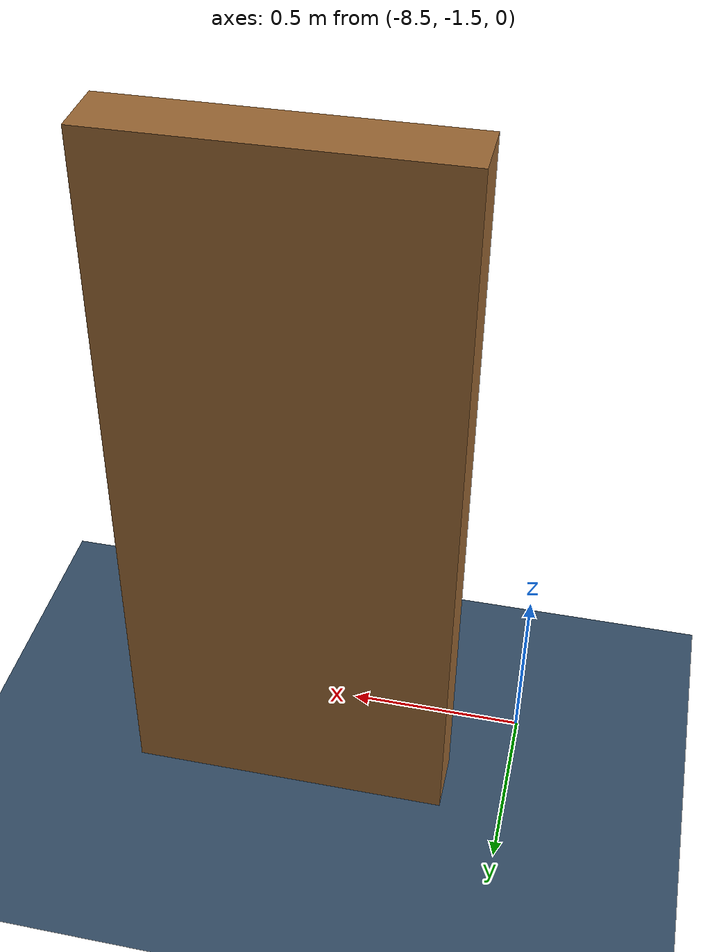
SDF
<?xml version="1.0" ?>
<sdf version="1.9">
  <world name="loyola_lite">

    <physics name="1ms" type="ignored">
      <max_step_size>0.001</max_step_size>
      <real_time_factor>1.0</real_time_factor>
    </physics>

    <plugin filename="ignition-gazebo-physics-system" name="gz::sim::systems::Physics">
    </plugin>

    <plugin filename="ignition-gazebo-sensors-system" name="gz::sim::systems::Sensors">
      <render_engine>
        ogre2
      </render_engine>
    </plugin>

    <plugin filename="ignition-gazebo-imu-system" name="gz::sim::systems::Imu">
    </plugin>

    <plugin filename="ignition-gazebo-scene-broadcaster-system" name="gz::sim::systems::SceneBroadcaster">
    </plugin>

    <plugin filename="ignition-gazebo-user-commands-system" name="gz::sim::systems::UserCommands">
    </plugin>

    <scene>
      <ambient>0.3 0.3 0.3 1.0</ambient>
      <background>0.8 0.8 0.8 1.0</background>
      <grid>false</grid>
      <origin_visual>false</origin_visual>
      <shadows>true</shadows>
    </scene>

    <light type="directional" name="sun">
      <cast_shadows>true</cast_shadows>
      <pose>0 0 10 0 0 0</pose>
      <diffuse>0.8 0.8 0.8 1</diffuse>
      <specular>0.2 0.2 0.2 1</specular>
      <attenuation>
        <range>1000</range>
        <constant>0.9</constant>
        <linear>0.01</linear>
        <quadratic>0.001</quadratic>
      </attenuation>
      <direction>-0.25 0.25 -0.9</direction>
    </light>

    <model name="ground_plane">
      <static>true</static>
      <pose>0 0 0 0 0 0</pose>
      <link name="link">
        <collision name="collision">
          <geometry><plane><normal>0 0 1</normal><size>40 15</size></plane></geometry>
        </collision>
        <visual name="visual">
          <geometry><plane><normal>0 0 1</normal><size>40 15</size></plane></geometry>
          <material>
            <ambient>0.2 0.3 0.4 1</ambient> <diffuse>0.2 0.3 0.4 1</diffuse>
            <specular>0.1 0.1 0.1 1</specular>
          </material>
        </visual>
      </link>
    </model>

    <model name='Loyola'>
      <pose>0.011576 0.011516 0 0 -0 0</pose>
      <link name='Door_0'>
        <collision name='Door_0_Collision'>
          <geometry>
            <box>
              <size>0.9 0.17 2</size>
            </box>
          </geometry>
          <pose>0 0 1 0 -0 0</pose>
          <max_contacts>10</max_contacts>
          <surface>
            <contact>
              <ode/>
            </contact>
            <bounce/>
            <friction>
              <torsional>
                <ode/>
              </torsional>
              <ode/>
            </friction>
          </surface>
        </collision>
        <visual name='Door_0_Visual'>
          <pose>0 0 1 0 -0 0</pose>
          <geometry>
            <box>
              <size>0.9 0.17 2</size>
            </box>
          </geometry>
          <material>
            <ambient>0.6 0.4 0.2 1</ambient>
            <diffuse>0.6 0.4 0.2 1</diffuse>
          </material>
        </visual>
        <pose>-7.88567 -1.23425 0 0 -0 0</pose>
        <self_collide>0</self_collide>
        <enable_wind>0</enable_wind>
        <kinematic>0</kinematic>
      </link>

      <static>1</static>
    </model>

  </world>
</sdf>
